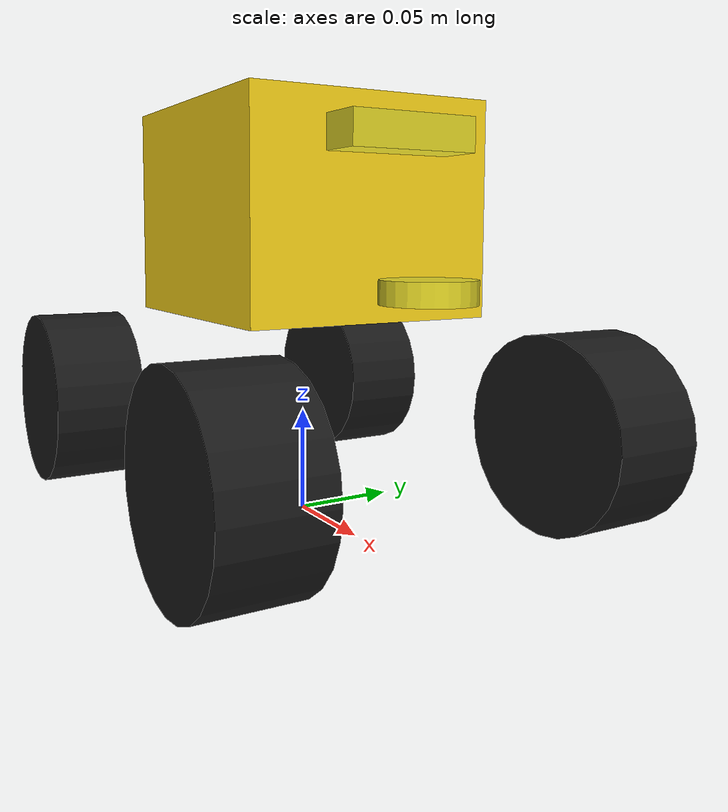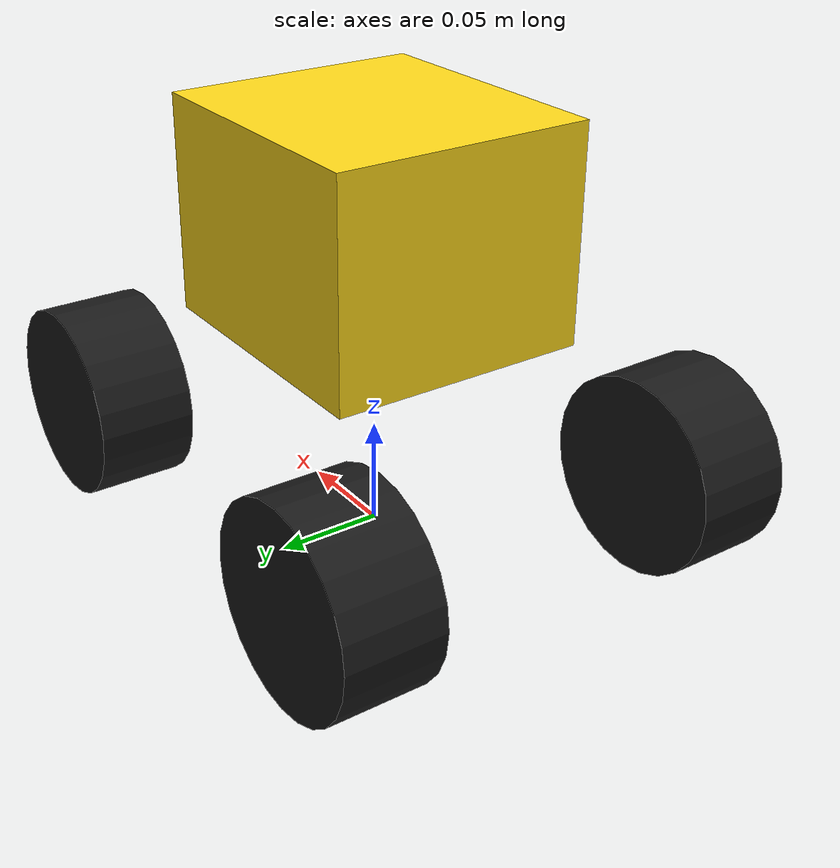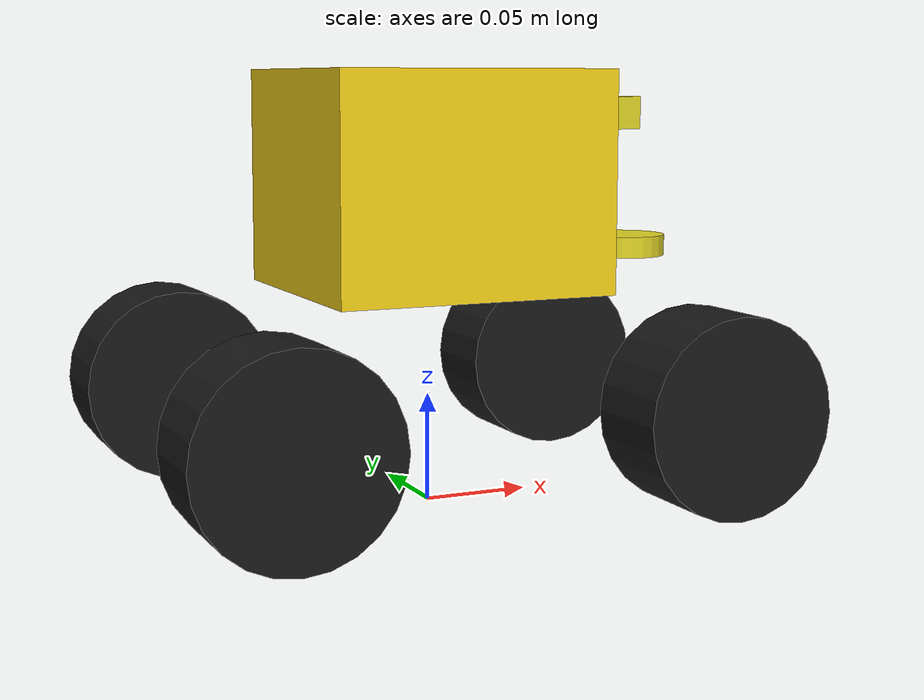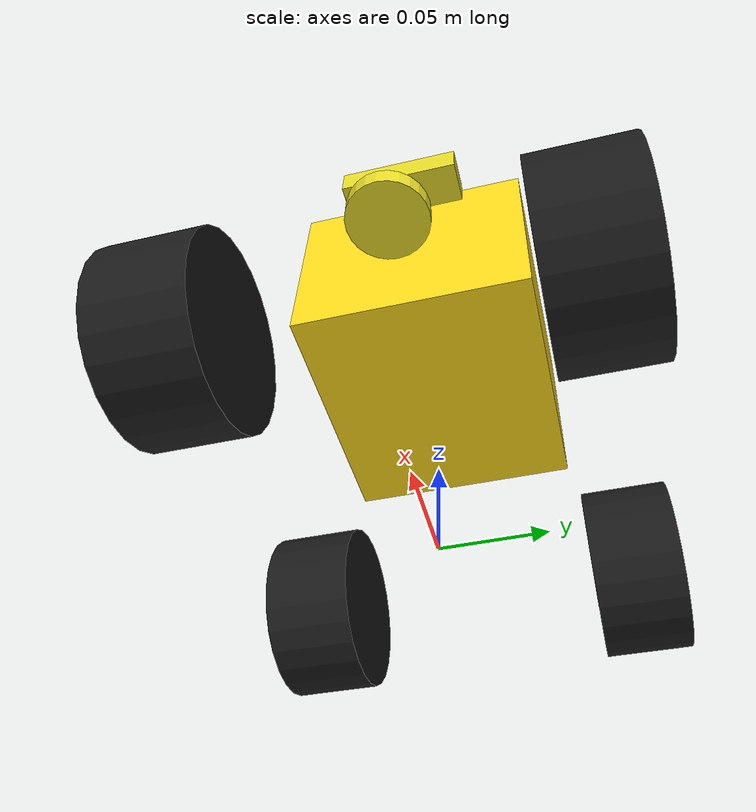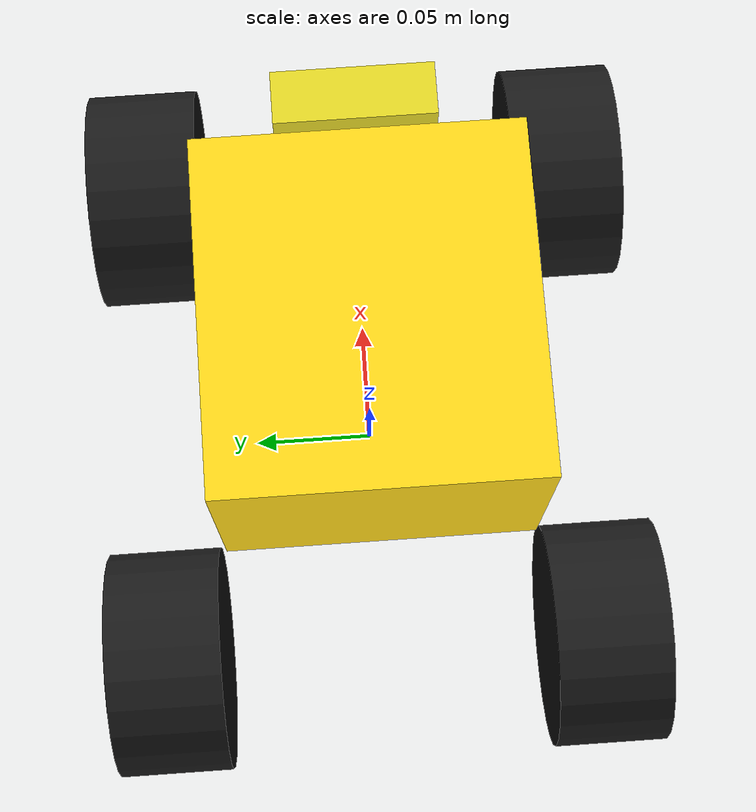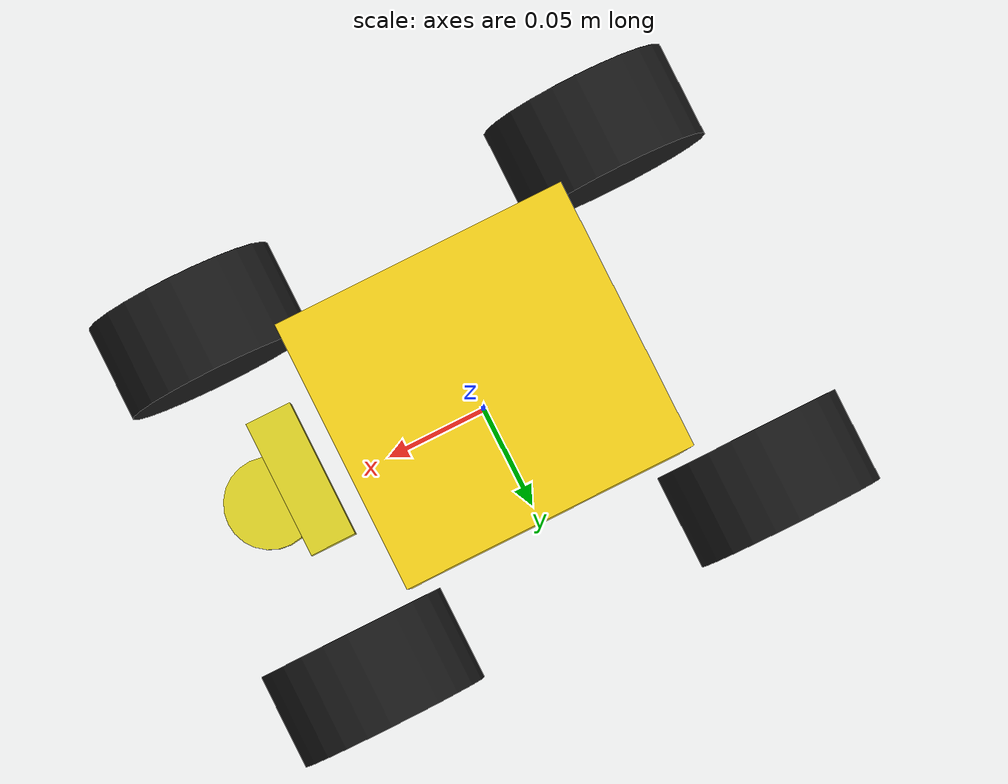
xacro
<?xml version="1.0"?>

<robot name="limo_four_diff" xmlns:xacro="http://ros.org/wiki/xacro">
    <xacro:arg name="robot_namespace" default="/" />
    <xacro:arg name="use_real_meshes" default="false" />

    <xacro:include filename="$(find limo_circle_sim)/urdf/limo_xacro.xacro" />
    <xacro:include filename="$(find limo_circle_sim)/urdf/limo_four_diff.gazebo" />

    <!-- Variables -->
    <xacro:property name="M_PI" value="3.14159"/>

    <!-- Vehicle Geometries -->
    <xacro:property name="base_x_size" value="0.13" />
    <xacro:property name="base_y_size" value="0.12" />
    <xacro:property name="base_z_size" value="0.1" />

    <xacro:property name="wheelbase" value="0.2"/>
    <xacro:property name="track" value="0.13"/>
    <xacro:property name="wheel_vertical_offset" value="-0.10" />
    <xacro:property name="base_mass" value="2.1557"/>

    <xacro:property name="wheel_length" value="0.045" />
    <xacro:property name="wheel_radius" value="0.045" />
  <link name="base_footprint"/>

  <joint name="base_joint" type="fixed">
    <parent link="base_footprint"/>
    <child link="base_link"/>
    <origin xyz="0.0 0.0 0.15" rpy="0 0 0"/>
  </joint>
    <!-- Base link -->
    <link name="base_link">
        <xacro:if value="$(arg use_real_meshes)">
            <visual>
                <origin xyz="0 0 -0.15" rpy="0 0 1.57" />
                <geometry>
                    <mesh filename="file://$(find limo_circle_sim)/meshes/limo_base.dae" scale="1 1 1"/>
                </geometry>
            </visual>
        </xacro:if>
        <xacro:unless value="$(arg use_real_meshes)">
            <visual>
                <origin xyz="0 0 0" rpy="0 0 0" />
                <geometry>
                    <box size="${base_x_size} ${base_y_size} ${base_z_size}"/>
                </geometry>
                <material name="limo_yellow">
                    <color rgba="1.0 0.85 0.1 1"/>
                </material>
            </visual>
        </xacro:unless>
        <collision>
            <origin xyz="0 0 0" rpy="0 0 0" />
            <geometry>
                <box size="${base_x_size} ${base_y_size} ${base_z_size}"/>
            </geometry>
        </collision>
    </link>

    <link name="inertial_link">
        <inertial>
            <origin xyz="0.0 0.0 0.0" />
            <mass value="${base_mass}" />
            <inertia ixx="0.24" ixy="0" ixz="0"
                     iyy="0.96" iyz="0"
                     izz="0.96" />
        </inertial>
    </link>

    <joint name="inertial_joint" type="fixed">
        <origin xyz="0 0 0" rpy="0 0 0" />
        <parent link="base_link" />
        <child link="inertial_link" />
    </joint>

    <xacro:limo_laser parent_prefix="base_link" frame_prefix="laser">
        <origin xyz="0.103 0 -0.034" rpy="0 0 0"/>
    </xacro:limo_laser>

    <xacro:limo_depth_camera parent_prefix="base_link" frame_prefix="depth_camera">
        <origin xyz="0.084 0 0.03" rpy="0 0 0"/>
    </xacro:limo_depth_camera>

    <xacro:limo_imu parent_prefix="base_link" frame_prefix="imu">
        <origin xyz="0.0 0 -0.1" rpy="0 0 0"/>
    </xacro:limo_imu>

    <xacro:limo_wheel parent_prefix="base_link" wheel_prefix="front_left" reflect="1">
        <origin xyz="${wheelbase/2} ${track/2} ${wheel_vertical_offset}" rpy="0 0  0" />
    </xacro:limo_wheel>

    <xacro:limo_wheel parent_prefix="base_link" wheel_prefix="front_right" reflect="-1">
        <origin xyz="${wheelbase/2} ${-track/2} ${wheel_vertical_offset}" rpy="${M_PI} 0 0" />
    </xacro:limo_wheel>

    <xacro:limo_wheel parent_prefix="base_link" wheel_prefix="rear_left" reflect="1">
        <origin xyz="${-wheelbase/2} ${track/2} ${wheel_vertical_offset}" rpy="0 0 0" />
    </xacro:limo_wheel>

    <xacro:limo_wheel parent_prefix="base_link" wheel_prefix="rear_right" reflect="-1">
        <origin xyz="${-wheelbase/2} ${-track/2} ${wheel_vertical_offset}" rpy="${M_PI} 0 0" />
    </xacro:limo_wheel>
</robot>

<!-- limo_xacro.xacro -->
<robot name="limo_xacro" xmlns:xacro="http://ros.org/wiki/xacro">
    <!-- use_real_meshes arg is declared on the top-level limo_four_diff.xacro
         and inherited here. true → wheel mesh DAE, false → cylinder primitive. -->
    <xacro:macro name="limo_wheel" params="parent_prefix wheel_prefix reflect *joint_pose">
        <link name="${wheel_prefix}_wheel_link">
            <inertial>
                <origin xyz="0 0 0" />
                <mass value="0.5" />
                <inertia ixx="0.01055" ixy="0" ixz="0" iyy="0.00075" iyz="0" izz="0.01055" />
            </inertial>
            <xacro:if value="$(arg use_real_meshes)">
                <visual>
                    <origin xyz="0 0 0" rpy="0 0 0" />
                    <geometry>
                        <mesh filename="file://$(find limo_circle_sim)/meshes/limo_wheel.dae" />
                    </geometry>
                </visual>
            </xacro:if>
            <xacro:unless value="$(arg use_real_meshes)">
                <visual>
                    <origin xyz="0 ${wheel_length/2} 0" rpy="1.57 0 0" />
                    <geometry>
                        <cylinder length="${wheel_length}" radius="${wheel_radius}" />
                    </geometry>
                    <material name="wheel_black">
                        <color rgba="0.1 0.1 0.1 1"/>
                    </material>
                </visual>
            </xacro:unless>
            <collision>
              <origin xyz="0 ${wheel_length/2} 0" rpy="1.57 0 0" />
              <geometry>
                  <cylinder length="${wheel_length}" radius="${wheel_radius}" />
              </geometry>
            </collision>
        </link>

        <joint name="${wheel_prefix}_wheel" type="continuous">
            <parent link="${parent_prefix}"/>
            <child link="${wheel_prefix}_wheel_link"/>
            <xacro:insert_block name="joint_pose"/>
            <axis xyz="0 ${reflect*1} 0"/>
        </joint>
    </xacro:macro>

    <xacro:macro name="limo_laser" params="parent_prefix frame_prefix *joint_pose">
        <link name='${frame_prefix}_link'>
            <pose>0 0 0 0 0 0</pose>
            <inertial>
                <mass value="0.1"/>
                <origin xyz="0.0 0 0" rpy="0 0 0"/>
                <inertia
                    ixx="1e-6" ixy="0" ixz="0"
                    iyy="1e-6" iyz="0"
                    izz="1e-6"
                />
            </inertial>
            <visual name='laser_visual'>
                <origin xyz="0 0 0" rpy="0 0 0"/>
                <geometry>
                    <cylinder radius="0.02" length="0.01"/>
                </geometry>
                <material name=''>
                    <ambient>0.1 0.1 0.1 1</ambient>
                    <diffuse>0.1 0.1 0.2 1</diffuse>
                    <specular>0 0 0 0</specular>
                    <emissive>0 0 0 1</emissive>
                </material>
            </visual>
            <collision name='laser_collision'>
                <origin xyz="0 0 0" rpy="0 0 0"/>
                <geometry>
                    <cylinder radius="0.032" length="0.016"/>
                </geometry>
            </collision>
        </link>
        <joint type="fixed" name="laser_joint">
            <xacro:insert_block name="joint_pose"/>
            <child link="${frame_prefix}_link"/>
            <parent link="${parent_prefix}"/>
        </joint>
        <gazebo reference="${frame_prefix}_link">
            <material>Gazebo/Yellow</material>
        </gazebo>
    </xacro:macro>

    <xacro:macro name="limo_depth_camera" params="parent_prefix frame_prefix *joint_pose">
        <link name='${frame_prefix}_link'>
            <pose>0 0 0 0 0 0</pose>
            <inertial>
                <mass value="0.1"/>
                <origin xyz="0.0 0 0" rpy="0 0 0"/>
                <inertia
                    ixx="1e-6" ixy="0" ixz="0"
                    iyy="1e-6" iyz="0"
                    izz="1e-6"
                />
            </inertial>
            <visual name='depth_camera_visual'>
                <origin xyz="0 0 0" rpy="0 0 0"/>
                <geometry>
                    <box size="0.02 0.06 0.015"/>
                </geometry>
                <material name=''>
                    <ambient>0.1 0.1 0.1 1</ambient>
                    <diffuse>0.1 0.1 0.2 1</diffuse>
                    <specular>0 0 0 0</specular>
                    <emissive>0 0 0 1</emissive>
                </material>
            </visual>
            <collision name='depth_camera_collision'>
                <origin xyz="0 0 0" rpy="0 0 0"/>
                <geometry>
                    <box size="0.02 0.06 0.015"/>
                </geometry>
            </collision>
        </link>

        <joint type="fixed" name="depth_camera_joint">
            <xacro:insert_block name="joint_pose"/>
            <child link="${frame_prefix}_link"/>
            <parent link="${parent_prefix}"/>
        </joint>
        <link name="depth_link"></link>

        <joint name="${frame_prefix}_to_camera_joint" type="fixed">
            <origin xyz="0 0 0" rpy="${-M_PI/2} 0 ${-M_PI/2} "/>
            <parent link="${frame_prefix}_link"/>
            <child link="depth_link"/>
          </joint>

        <gazebo reference="${frame_prefix}_link">
            <material>Gazebo/Yellow</material>
        </gazebo>
    </xacro:macro>

    <xacro:macro name="limo_imu" params="parent_prefix frame_prefix  *joint_pose">
        <link name='${frame_prefix}_link'>
            <pose>0 0 0 0 0 0</pose>
            <inertial>
                <mass value="0.01"/>
                <origin xyz="0.0 0 0" rpy="0 0 0"/>
                <inertia
                    ixx="1e-7" ixy="0" ixz="0"
                    iyy="1e-7" iyz="0"
                    izz="1e-7"
                />
            </inertial>
            <visual name='imu_visual'>
                <origin xyz="0 0 0" rpy="0 0 0"/>
                <geometry>
                    <box size="0.001 0.001 0.001"/>
                </geometry>
                <material name=''>
                    <ambient>0.1 0.1 0.1 1</ambient>
                    <diffuse>0.1 0.1 0.2 1</diffuse>
                    <specular>0 0 0 0</specular>
                    <emissive>0 0 0 1</emissive>
                </material>
            </visual>
            <collision name='imu_collision'>
                <origin xyz="0 0 0" rpy="0 0 0"/>
                <geometry>
                    <box size="0.001 0.001 0.001"/>
                </geometry>
            </collision>
        </link>
        <joint type="fixed" name="imu_joint">
            <xacro:insert_block name="joint_pose"/>
            <child link="${frame_prefix}_link"/>
            <parent link="${parent_prefix}"/>
        </joint>
        <gazebo reference="${frame_prefix}_link">
            <material>Gazebo/Yellow</material>
        </gazebo>
    </xacro:macro>
</robot>
